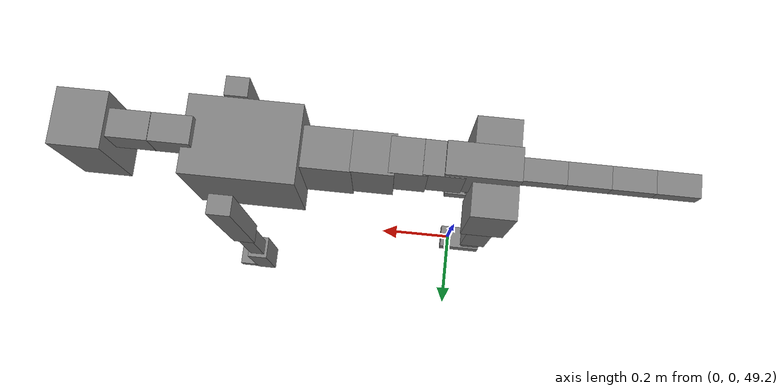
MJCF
<mujoco model="dog">

    <default>
        <joint armature="0.02" stiffness="1" damping="0.2" limited="true"/>
        <geom condim="3" friction="1 0.05 0.05" margin="0.01"/>
        <motor ctrllimited="true" ctrlrange="-1.0 1.0" forcelimited="true" gear="50"/>
    </default>

    <compiler inertiafromgeom="true" angle="radian"/>

    <option timestep="0.016" iterations="50" tolerance="1e-10" solver="Newton" jacobian="dense" cone="pyramidal"/>

    <size nconmax="20000" njmax="60000" nstack="5000000"/>
    <visual>
        <map force="0.1" zfar="30"/>
        <rgba haze="0.15 0.25 0.35 1"/>
        <quality shadowsize="2048"/>
        <global offwidth="800" offheight="800"/>
    </visual>

    <asset>
        <texture type="skybox" builtin="gradient" rgb1="0.3 0.5 0.7" rgb2="0 0 0" width="512" height="512"/>
        <texture name="texplane" type="2d" builtin="checker" rgb1=".2 .3 .4" rgb2=".1 0.15 0.2" width="512" height="512"
                 mark="cross" markrgb=".8 .8 .8"/>
        <texture name="texgeom" type="cube" builtin="flat" mark="cross" width="127" height="1278" rgb1="0.8 0.6 0.4"
                 rgb2="0.8 0.6 0.4" markrgb="1 1 1" random="0.01"/>

        <material name="matplane" reflectance="0.3" texture="texplane" texrepeat="1 1" texuniform="true"/>
        <material name="matgeom" texture="texgeom" texuniform="true" rgba="0.8 0.6 .4 1"/>
    </asset>

    <worldbody>
        <geom name="floor" pos="0 0 0" size="0 0 .25" type="plane" material="matplane" condim="3"/>

        <light directional="false" diffuse=".2 .2 .2" specular="0 0 0" pos="0 0 5" dir="0 0 -1" castshadow="false"/>
        <light mode="targetbodycom" target="torso" directional="false" diffuse=".8 .8 .8" specular="0.3 0.3 0.3"
               pos="0 0 4.0" dir="0 0 -1"/>

        <body name="root" pos="0 0 50">
            <freejoint name="root_1"/>
            <geom type="box" pos="0 0 -0.02" size="0.0774  0.0358  0.063" density="2030"/>

            <body name="spine1" pos="0.054 0 0">
                <joint name="spine1_y" axis="0 1 0" range="0 0.7" limited="true"/>
                <geom type="box" pos="0.02375 0 -0.03" size="0.04375  0.0375  0.05985" density="2030"/>

                <body name="spine2" pos="0.0612 0 0">
                    <joint name="spine2_y" axis="0 1 0" range="-0.15 0.15" limited="true"/>
                    <geom type="box" pos="0.03555  0  -0.04" size="0.04055  0.039  0.06615" density="2030"/>

                    <body name="spine3" pos="0.0730 0 0">
                        <joint name="spine3_y" axis="0 1 0" range="-0.15 0.15" limited="true"/>
                        <geom type="box" pos="0.03555  0  -0.057" size="0.04555  0.0445  0.081" density="2030"/>

                        <body name="spine4" pos="0.0780 0 0">
                            <joint name="spine4_y" axis="0 1 0" range="-0.15 0.15" limited="true"/>
                            <geom type="box" pos="0.05265  0  -0.07" size="0.05265  0.045  0.09135" density="2030"/>

                            <body name="torso" pos="0.1082 0 0">
                                <joint name="torso_y" axis="0 1 0" range="-0.15 0.15" limited="true"/>
                                <geom type="box" pos="0.11925  0  -0.085" size="0.11925  0.085  0.11745"
                                      density="2030"/>

                                <body name="neck1" pos="0.2160  0   0.0180">
                                    <joint name="neck1_y" axis="0 1 0" range="-1.2  -1" limited="true"/>
                                    <geom type="box" pos="0.0423  0  0" size="0.0423  0.03  0.036" density="2325"/>

                                    <body name="neck2" pos="0.0853  0  0">
                                        <joint name="neck2_y" axis="0 1 0" range="0.1  0" limited="true"/>
                                        <geom type="box" pos="0.0423  0  0" size="0.0423  0.03  0.036" density="2325"/>

                                        <body name="head" pos="0.0853  0  0">
                                            <joint name="head_y" axis="0 1 0" range="-0.3  -0.2" limited="true"/>
                                            <geom type="box" pos="0.0531  0  -0.055" size="0.0531  0.06  0.1044"
                                                  density="4030"/>

                                        </body>
                                    </body>
                                </body>

                                <body name="front_shoulder" pos="0.156  0   -0.0480">
                                    <joint name="front_shoulder_y" axis="0 1 0" range="-1 1.5" limited="true"/>
                                    <geom type="box" pos="0 0.13 -0.1311" size="0.0255  0.0218  0.1578" density="1158"/>
                                    <geom type="box" pos="0 -0.13 -0.1311" size="0.0255  0.0218  0.1578"
                                          density="1158"/>

                                    <body name="front_elbow" pos="0  0  -0.2623">
                                        <joint name="front_elbow_y" axis="0 1 0" range="-2 0" limited="true"/>
                                        <geom type="box" pos="0 0.13 -0.1195" size="0.0180  0.0184  0.1195"
                                              density="1081"/>
                                        <geom type="box" pos="0 -0.13 -0.1195" size="0.0180  0.0184  0.1195"
                                              density="1081"/>

                                        <body name="front_wrist" pos="0  0  -0.2390">
                                            <joint name="front_wrist_y" axis="0 1 0" range="-0.2 0" limited="true"/>
                                            <geom type="box" pos="0 0.13 -0.0838" size="0.0252  0.0280  0.0969"
                                                  density="1664"/>
                                            <geom type="box" pos="0 -0.13 -0.0838" size="0.0252  0.0280  0.0969"
                                                  density="1664"/>

                                            <body name="front_finger_end" pos="0  0  -0.1675">
                                                <joint name="front_finger_y" axis="0 1 0" range="-0.4 1"
                                                       limited="true"/>
                                                <geom type="box" pos="0.0259  0.13  -0.0020"
                                                      size="0.0474  0.0259  0.0170" density="1515"/>
                                                <geom type="box" pos="0.0259  -0.13  -0.0020"
                                                      size="0.0474  0.0259  0.0170" density="1515"/>

                                            </body>

                                        </body>
                                    </body>
                                </body>

                            </body>
                        </body>
                    </body>
                </body>
            </body>

            <body name="back_hip" pos="-0.03 0 -0.018">
                <joint name="back_hip_y" axis="0 1 0" range="-1.5 0.3" limited="true"/>
                <geom type="box" pos="0 0.07 -0.0712" size="0.0479  0.0376  0.0940" density="1154"/>
                <geom type="box" pos="0 -0.07 -0.0712" size="0.0479  0.0376  0.0940" density="1154"/>

                <body name="back_knee" pos="0  0  -0.1424">
                    <joint name="back_knee_y" axis="0 1 0" range="0 2.8" limited="true"/>
                    <geom type="box" pos="0 0.07 -0.0950" size="0.0296  0.0292  0.1106" density="1227"/>
                    <geom type="box" pos="0 -0.07 -0.0950" size="0.0296  0.0292  0.1106" density="1227"/>

                    <body name="back_ankle" pos="0  0  -0.1900">
                        <joint name="back_ankle_y" axis="0 1 0" range="-2.2 0" limited="true"/>
                        <geom type="box" pos="0 0.07 -0.0439" size="0.0224  0.0224  0.0551" density="1284"/>
                        <geom type="box" pos="0 -0.07 -0.0439" size="0.0224  0.0224  0.0551" density="1284"/>

                        <body name="back_toe_end" pos="0  0  -0.0878">
                            <joint name="back_toe_y" axis="0 1 0" range="-0.4 1" limited="true"/>
                            <geom type="box" pos="0.0264  0.07  -0.0029" size="0.0485  0.0264  0.0179" density="1515"/>
                            <geom type="box" pos="0.0264  -0.07  -0.0029" size="0.0485  0.0264  0.0179" density="1515"/>

                        </body>
                    </body>
                </body>
            </body>

            <body name="tail1" pos="-0.074 0 -0.006">
                <joint name="tail1_y" axis="0 1 0" range="-0.2 0.2" limited="true"/>
                <geom type="box" pos="-0.0536  0  0" size="0.045  0.025  0.0175" density="1587"/>

                <body name="tail2" pos="-0.09 0 0">
                    <joint name="tail2_y" axis="0 1 0" range="-0.2 0.2" limited="true"/>
                    <geom type="box" pos="-0.0536  0  0" size="0.045  0.025  0.0175" density="1587"/>

                    <body name="tail3" pos="-0.09 0 0">
                        <joint name="tail3_y" axis="0 1 0" range="-0.2 0.2" limited="true"/>
                        <geom type="box" pos="-0.0536  0  0" size="0.045  0.025  0.0175" density="1587"/>

                        <body name="tail4" pos="-0.09 0 0">
                            <joint name="tail4_y" axis="0 1 0" range="-0.2 0.2" limited="true"/>
                            <geom type="box" pos="-0.0536  0  0" size="0.045  0.025  0.0175" density="1587"/>

                        </body>
                    </body>
                </body>
            </body>
        </body>
    </worldbody>

    <actuator>
        <motor joint="spine1_y" forcerange="-150 150     "/>
        <motor joint="spine2_y" forcerange="-150 150     "/>
        <motor joint="spine3_y" forcerange="-150 150     "/>
        <motor joint="spine4_y" forcerange="-150 150     "/>
        <motor joint="torso_y" forcerange="-150 150     "/>
        <motor joint="neck1_y" forcerange="-100 100       "/>
        <motor joint="neck2_y" forcerange="-100 100       "/>
        <motor joint="head_y" forcerange="-150 150       "/>
        <motor joint="front_shoulder_y" forcerange="-101.32 143.88"/>
        <motor joint="front_elbow_y" forcerange="-110.90 122.85"/>
        <motor joint="front_wrist_y" forcerange="-119.57 104.55"/>
        <motor joint="front_finger_y" forcerange="-76.76 21.21"/>
        <motor joint="back_hip_y" forcerange="-338.81 361.95"/>
        <motor joint="back_knee_y" forcerange="-259.06 365.03"/>
        <motor joint="back_angle_y" forcerange="-113.85 144.87"/>
        <motor joint="back_toe_y" forcerange="-69.89 61.53"/>
        <motor joint="tail1_y" forcerange="-50 50     "/>
        <motor joint="tail2_y" forcerange="-50 50     "/>
        <motor joint="tail3_y" forcerange="-50 50     "/>
        <motor joint="tail4_y" forcerange="-50 50     "/>
    </actuator>
</mujoco>
